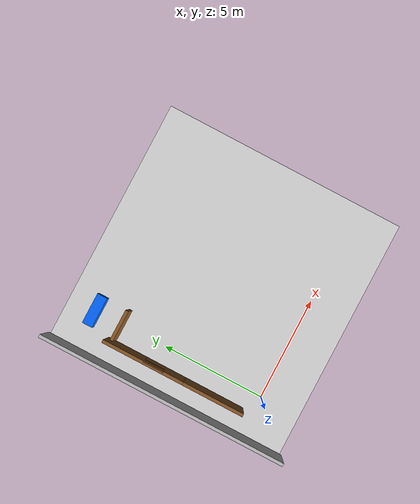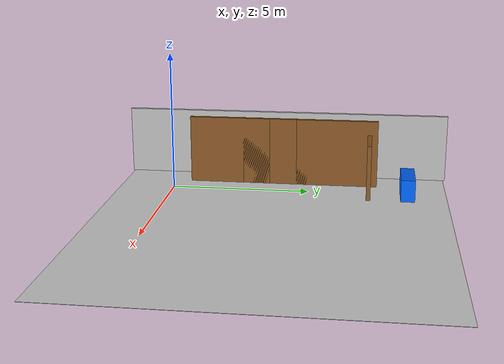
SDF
<sdf version="1.9">
 <world name="simple_5x5_grid">
  <model name="ground_plane">
   <static>true</static>
   <pose>4.0 4.0 0 0 0 0</pose>
   <link name="ground_link">
    <visual name="ground_visual">
     <geometry><box><size>12.0 12.0 0.01</size></box></geometry>
     <material><ambient>0.85 0.85 0.85 1.0</ambient><diffuse>0.85 0.85 0.85 1.0</diffuse></material>
    </visual>
    <collision name="ground_visual_collision">
     <geometry><box><size>12.0 12.0 0.01</size></box></geometry>
    </collision>
    <collision name="ground_collision">
     <geometry><plane><normal>0 0 1</normal><size>12.0 12.0</size></plane></geometry>
    </collision>
   </link>
  </model>
  <model name="wall_west">
   <static>true</static>
   <pose>-2.0 4.0 1.25 0 0 0</pose>
   <link name="wall_west_link">
    <visual name="wall_west_visual">
     <geometry><box><size>0.15 12.15 2.5</size></box></geometry>
     <material><ambient>0.75 0.75 0.75 1.0</ambient><diffuse>0.75 0.75 0.75 1.0</diffuse></material>
    </visual>
    <collision name="wall_west_visual_collision">
     <geometry><box><size>0.15 12.15 2.5</size></box></geometry>
    </collision>
   </link>
  </model>
  <model name="aisle_L_N_10_011">
   <static>true</static>
   <pose>-0.9 2 1.25 0 0 0</pose>
   <link name="aisle_L_N_10_011_link">
    <visual name="aisle_L_N_10_011_vis">
     <geometry><box><size>0.15 3.0 2.5</size></box></geometry>
     <material><ambient>0.55 0.35 0.15 1.0</ambient><diffuse>0.55 0.35 0.15 1.0</diffuse></material>
    </visual>
    <collision name="aisle_L_N_10_011_vis_collision">
     <geometry><box><size>0.15 3.0 2.5</size></box></geometry>
    </collision>
   </link>
  </model>
  <model name="aisle_L_N_20_030">
   <static>true</static>
   <pose>-0.9 4 1.25 0 0 0</pose>
   <link name="aisle_L_N_20_030_link">
    <visual name="aisle_L_N_20_030_vis">
     <geometry><box><size>0.15 3.0 2.5</size></box></geometry>
     <material><ambient>0.55 0.35 0.15 1.0</ambient><diffuse>0.55 0.35 0.15 1.0</diffuse></material>
    </visual>
    <collision name="aisle_L_N_20_030_vis_collision">
     <geometry><box><size>0.15 3.0 2.5</size></box></geometry>
    </collision>
   </link>
  </model>
  <model name="aisle_L_N_30_045">
   <static>true</static>
   <pose>-0.9 6 1.25 0 0 0</pose>
   <link name="aisle_L_N_30_045_link">
    <visual name="aisle_L_N_30_045_vis">
     <geometry><box><size>0.15 3.0 2.5</size></box></geometry>
     <material><ambient>0.55 0.35 0.15 1.0</ambient><diffuse>0.55 0.35 0.15 1.0</diffuse></material>
    </visual>
    <collision name="aisle_L_N_30_045_vis_collision">
     <geometry><box><size>0.15 3.0 2.5</size></box></geometry>
    </collision>
   </link>
  </model>
  <model name="pick_table_PICK_1_064">
   <static>true</static>
   <pose>0 8.6 0.4 0 0 0</pose>
   <link name="pick_table_PICK_1_064_link">
    <visual name="pick_table_PICK_1_064_vis">
     <geometry><box><size>1.5 0.5 0.8</size></box></geometry>
     <material><ambient>0.0 0.4 1.0 1.0</ambient><diffuse>0.0 0.4 1.0 1.0</diffuse></material>
    </visual>
    <collision name="pick_table_PICK_1_064_vis_collision">
     <geometry><box><size>1.5 0.5 0.8</size></box></geometry>
    </collision>
   </link>
  </model>
  <model name="pick_shelf_PICK_1_065">
   <static>true</static>
   <pose>0 7.2 1.0 0 0 0</pose>
   <link name="pick_shelf_PICK_1_065_link">
    <visual name="pick_shelf_PICK_1_065_vis">
     <geometry><box><size>1.5 0.15 2.0</size></box></geometry>
     <material><ambient>0.55 0.35 0.15 1.0</ambient><diffuse>0.55 0.35 0.15 1.0</diffuse></material>
    </visual>
    <collision name="pick_shelf_PICK_1_065_vis_collision">
     <geometry><box><size>1.5 0.15 2.0</size></box></geometry>
    </collision>
   </link>
  </model>
 </world>
</sdf>
